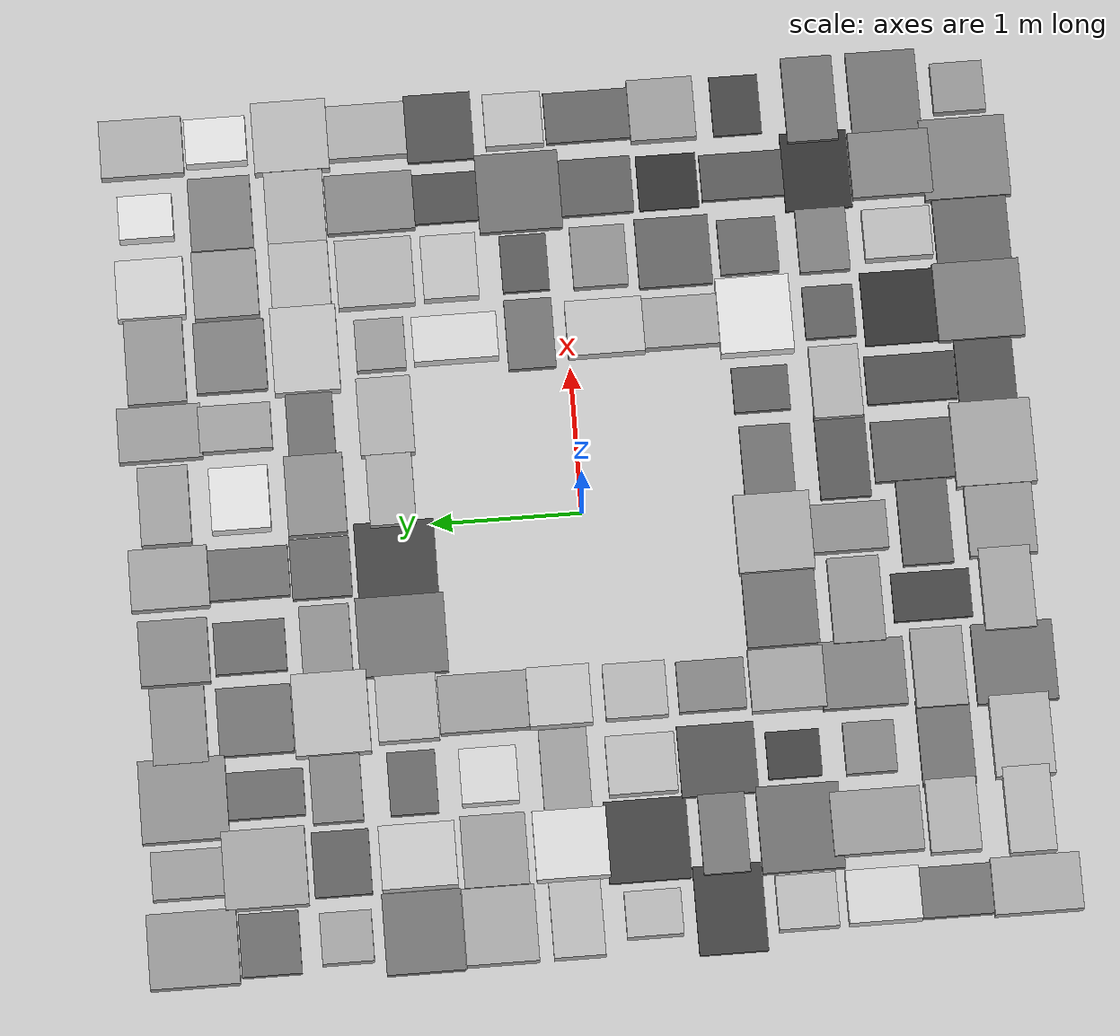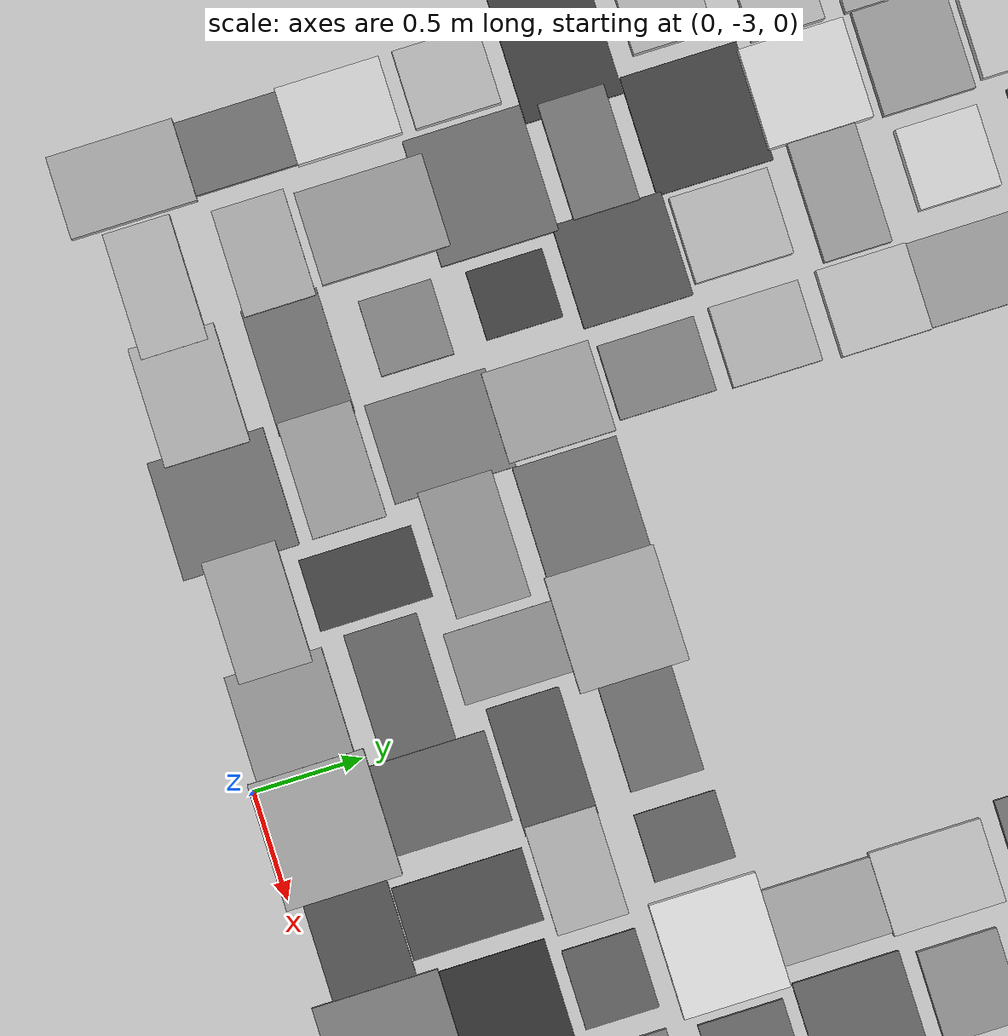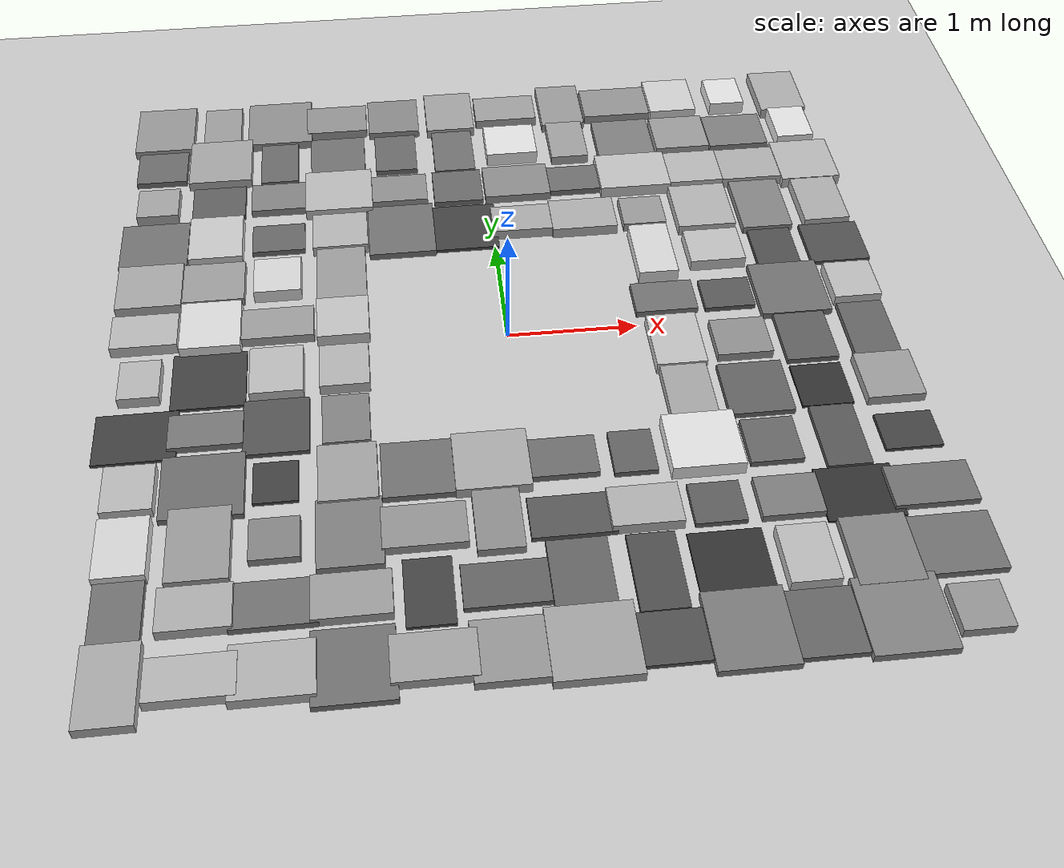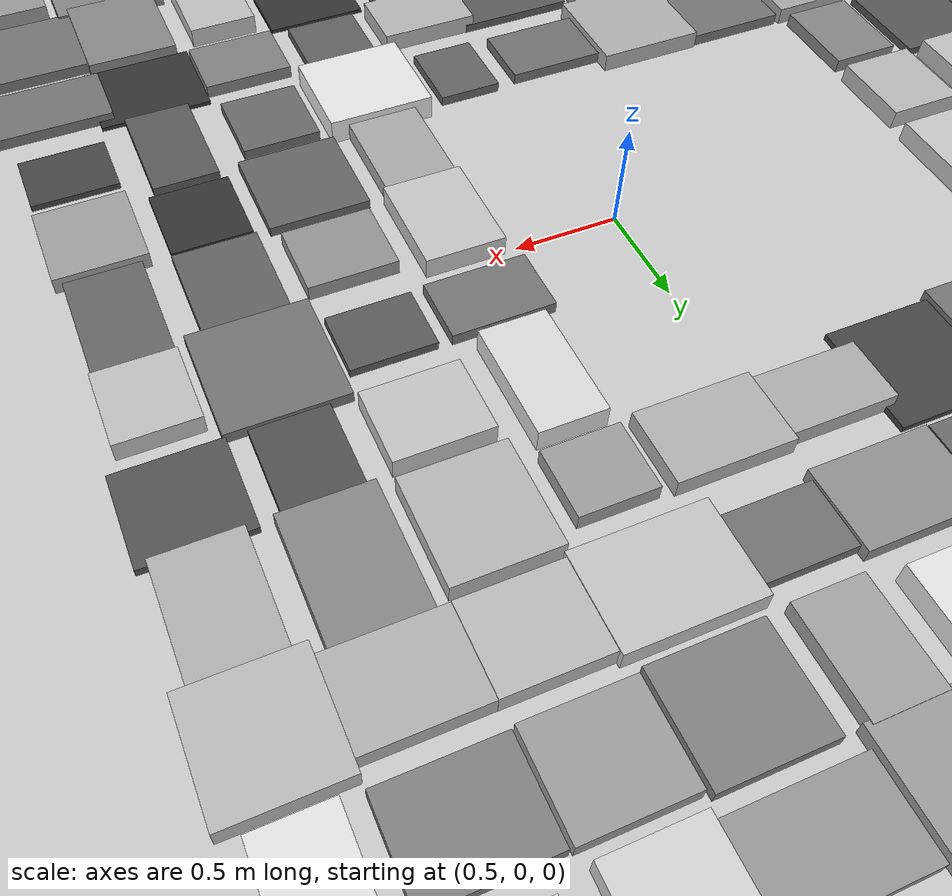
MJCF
<mujoco model="terrain_scene">
  <compiler angle="radian" coordinate="local" inertiafromgeom="true" />
  <option timestep="0.002" gravity="0.0 0.0 -9.81" iterations="50" solver="Newton" />
  <visual>
    <global offwidth="1920" offheight="1080" />
    <quality shadowsize="4096" />
    <headlight ambient="0.4 0.4 0.4" diffuse="0.6 0.6 0.6" />
  </visual>
  <asset>
    <texture name="grid_texture" type="2d" builtin="checker" rgb1="0.9 0.9 0.9" rgb2="0.7 0.7 0.7" width="512" height="512" />
    <material name="grid_material" texture="grid_texture" texrepeat="10 10" reflectance="0.1" />
  </asset>
  <worldbody>
    <geom name="ground" type="plane" size="6.0 6.0 0.1" pos="0 0 0" rgba="0.8 0.8 0.8 1.0" friction="1.0 0.005 0.0001" />
    <geom name="box_0" type="box" size="0.1894 0.2905 0.0441" pos="-2.7500 -2.7500 0.0441" rgba="0.677 0.677 0.677 1.000" friction="1.0 0.005 0.0001" />
    <geom name="box_1" type="box" size="0.1684 0.2747 0.0282" pos="-2.7500 -2.2500 0.0282" rgba="0.455 0.455 0.455 1.000" friction="1.0 0.005 0.0001" />
    <geom name="box_2" type="box" size="0.1769 0.2399 0.0564" pos="-2.7500 -1.7500 0.0564" rgba="0.849 0.849 0.849 1.000" friction="1.0 0.005 0.0001" />
    <geom name="box_3" type="box" size="0.1795 0.1965 0.0486" pos="-2.7500 -1.2500 0.0486" rgba="0.740 0.740 0.740 1.000" friction="1.0 0.005 0.0001" />
    <geom name="box_4" type="box" size="0.2958 0.2251 0.0142" pos="-2.7500 -0.7500 0.0142" rgba="0.258 0.258 0.258 1.000" friction="1.0 0.005 0.0001" />
    <geom name="box_5" type="box" size="0.1521 0.1844 0.0477" pos="-2.7500 -0.2500 0.0477" rgba="0.727 0.727 0.727 1.000" friction="1.0 0.005 0.0001" />
    <geom name="box_6" type="box" size="0.2516 0.1683 0.0485" pos="-2.7500 0.2500 0.0485" rgba="0.739 0.739 0.739 1.000" friction="1.0 0.005 0.0001" />
    <geom name="box_7" type="box" size="0.2541 0.2372 0.0434" pos="-2.7500 0.7500 0.0434" rgba="0.667 0.667 0.667 1.000" friction="1.0 0.005 0.0001" />
    <geom name="box_8" type="box" size="0.2706 0.2573 0.0285" pos="-2.7500 1.2500 0.0285" rgba="0.459 0.459 0.459 1.000" friction="1.0 0.005 0.0001" />
    <geom name="box_9" type="box" size="0.1697 0.1686 0.0423" pos="-2.7500 1.7500 0.0423" rgba="0.652 0.652 0.652 1.000" friction="1.0 0.005 0.0001" />
    <geom name="box_10" type="box" size="0.2096 0.1951 0.0265" pos="-2.7500 2.2500 0.0265" rgba="0.430 0.430 0.430 1.000" friction="1.0 0.005 0.0001" />
    <geom name="box_11" type="box" size="0.2494 0.2933 0.0388" pos="-2.7500 2.7500 0.0388" rgba="0.604 0.604 0.604 1.000" friction="1.0 0.005 0.0001" />
    <geom name="box_12" type="box" size="0.2887 0.1537 0.0475" pos="-2.2500 -2.7500 0.0475" rgba="0.725 0.725 0.725 1.000" friction="1.0 0.005 0.0001" />
    <geom name="box_13" type="box" size="0.2451 0.1659 0.0453" pos="-2.2500 -2.2500 0.0453" rgba="0.694 0.694 0.694 1.000" friction="1.0 0.005 0.0001" />
    <geom name="box_14" type="box" size="0.2129 0.2949 0.0399" pos="-2.2500 -1.7500 0.0399" rgba="0.618 0.618 0.618 1.000" friction="1.0 0.005 0.0001" />
    <geom name="box_15" type="box" size="0.2900 0.2707 0.0272" pos="-2.2500 -1.2500 0.0272" rgba="0.441 0.441 0.441 1.000" friction="1.0 0.005 0.0001" />
    <geom name="box_16" type="box" size="0.2677 0.1527 0.0297" pos="-2.2500 -0.7500 0.0297" rgba="0.476 0.476 0.476 1.000" friction="1.0 0.005 0.0001" />
    <geom name="box_17" type="box" size="0.2744 0.2695 0.0146" pos="-2.2500 -0.2500 0.0146" rgba="0.265 0.265 0.265 1.000" friction="1.0 0.005 0.0001" />
    <geom name="box_18" type="box" size="0.2296 0.2409 0.0578" pos="-2.2500 0.2500 0.0578" rgba="0.869 0.869 0.869 1.000" friction="1.0 0.005 0.0001" />
    <geom name="box_19" type="box" size="0.2405 0.2119 0.0408" pos="-2.2500 0.7500 0.0408" rgba="0.631 0.631 0.631 1.000" friction="1.0 0.005 0.0001" />
    <geom name="box_20" type="box" size="0.2139 0.2478 0.0527" pos="-2.2500 1.2500 0.0527" rgba="0.798 0.798 0.798 1.000" friction="1.0 0.005 0.0001" />
    <geom name="box_21" type="box" size="0.2181 0.1872 0.0230" pos="-2.2500 1.7500 0.0230" rgba="0.382 0.382 0.382 1.000" friction="1.0 0.005 0.0001" />
    <geom name="box_22" type="box" size="0.2619 0.2725 0.0428" pos="-2.2500 2.2500 0.0428" rgba="0.660 0.660 0.660 1.000" friction="1.0 0.005 0.0001" />
    <geom name="box_23" type="box" size="0.1600 0.2392 0.0405" pos="-2.2500 2.7500 0.0405" rgba="0.627 0.627 0.627 1.000" friction="1.0 0.005 0.0001" />
    <geom name="box_24" type="box" size="0.2737 0.1966 0.0463" pos="-1.7500 -2.7500 0.0463" rgba="0.708 0.708 0.708 1.000" friction="1.0 0.005 0.0001" />
    <geom name="box_25" type="box" size="0.2881 0.1748 0.0282" pos="-1.7500 -2.2500 0.0282" rgba="0.454 0.454 0.454 1.000" friction="1.0 0.005 0.0001" />
    <geom name="box_26" type="box" size="0.1730 0.1673 0.0336" pos="-1.7500 -1.7500 0.0336" rgba="0.531 0.531 0.531 1.000" friction="1.0 0.005 0.0001" />
    <geom name="box_27" type="box" size="0.1583 0.1762 0.0144" pos="-1.7500 -1.2500 0.0144" rgba="0.262 0.262 0.262 1.000" friction="1.0 0.005 0.0001" />
    <geom name="box_28" type="box" size="0.2387 0.2521 0.0199" pos="-1.7500 -0.7500 0.0199" rgba="0.338 0.338 0.338 1.000" friction="1.0 0.005 0.0001" />
    <geom name="box_29" type="box" size="0.1977 0.2257 0.0490" pos="-1.7500 -0.2500 0.0490" rgba="0.746 0.746 0.746 1.000" friction="1.0 0.005 0.0001" />
    <geom name="box_30" type="box" size="0.2777 0.1565 0.0406" pos="-1.7500 0.2500 0.0406" rgba="0.629 0.629 0.629 1.000" friction="1.0 0.005 0.0001" />
    <geom name="box_31" type="box" size="0.1855 0.1874 0.0568" pos="-1.7500 0.7500 0.0568" rgba="0.855 0.855 0.855 1.000" friction="1.0 0.005 0.0001" />
    <geom name="box_32" type="box" size="0.2124 0.1574 0.0252" pos="-1.7500 1.2500 0.0252" rgba="0.412 0.412 0.412 1.000" friction="1.0 0.005 0.0001" />
    <geom name="box_33" type="box" size="0.2286 0.1653 0.0336" pos="-1.7500 1.7500 0.0336" rgba="0.530 0.530 0.530 1.000" friction="1.0 0.005 0.0001" />
    <geom name="box_34" type="box" size="0.1578 0.2887 0.0261" pos="-1.7500 2.2500 0.0261" rgba="0.425 0.425 0.425 1.000" friction="1.0 0.005 0.0001" />
    <geom name="box_35" type="box" size="0.2765 0.2854 0.0369" pos="-1.7500 2.7500 0.0369" rgba="0.576 0.576 0.576 1.000" friction="1.0 0.005 0.0001" />
    <geom name="box_36" type="box" size="0.2703 0.2669 0.0282" pos="-1.2500 -2.7500 0.0282" rgba="0.455 0.455 0.455 1.000" friction="1.0 0.005 0.0001" />
    <geom name="box_37" type="box" size="0.2668 0.1702 0.0408" pos="-1.2500 -2.2500 0.0408" rgba="0.632 0.632 0.632 1.000" friction="1.0 0.005 0.0001" />
    <geom name="box_38" type="box" size="0.2271 0.2786 0.0321" pos="-1.2500 -1.7500 0.0321" rgba="0.510 0.510 0.510 1.000" friction="1.0 0.005 0.0001" />
    <geom name="box_39" type="box" size="0.2078 0.2459 0.0422" pos="-1.2500 -1.2500 0.0422" rgba="0.651 0.651 0.651 1.000" friction="1.0 0.005 0.0001" />
    <geom name="box_40" type="box" size="0.1710 0.2217 0.0332" pos="-1.2500 -0.7500 0.0332" rgba="0.525 0.525 0.525 1.000" friction="1.0 0.005 0.0001" />
    <geom name="box_41" type="box" size="0.1849 0.2051 0.0471" pos="-1.2500 -0.2500 0.0471" rgba="0.720 0.720 0.720 1.000" friction="1.0 0.005 0.0001" />
    <geom name="box_42" type="box" size="0.1991 0.2069 0.0510" pos="-1.2500 0.2500 0.0510" rgba="0.774 0.774 0.774 1.000" friction="1.0 0.005 0.0001" />
    <geom name="box_43" type="box" size="0.1945 0.2923 0.0405" pos="-1.2500 0.7500 0.0405" rgba="0.627 0.627 0.627 1.000" friction="1.0 0.005 0.0001" />
    <geom name="box_44" type="box" size="0.2221 0.1993 0.0473" pos="-1.2500 1.2500 0.0473" rgba="0.722 0.722 0.722 1.000" friction="1.0 0.005 0.0001" />
    <geom name="box_45" type="box" size="0.2773 0.2479 0.0489" pos="-1.2500 1.7500 0.0489" rgba="0.744 0.744 0.744 1.000" friction="1.0 0.005 0.0001" />
    <geom name="box_46" type="box" size="0.2299 0.2449 0.0282" pos="-1.2500 2.2500 0.0282" rgba="0.455 0.455 0.455 1.000" friction="1.0 0.005 0.0001" />
    <geom name="box_47" type="box" size="0.2602 0.1804 0.0378" pos="-1.2500 2.7500 0.0378" rgba="0.589 0.589 0.589 1.000" friction="1.0 0.005 0.0001" />
    <geom name="box_48" type="box" size="0.2791 0.1698 0.0426" pos="-0.7500 -2.7500 0.0426" rgba="0.656 0.656 0.656 1.000" friction="1.0 0.005 0.0001" />
    <geom name="box_49" type="box" size="0.1643 0.2589 0.0152" pos="-0.7500 -2.2500 0.0152" rgba="0.272 0.272 0.272 1.000" friction="1.0 0.005 0.0001" />
    <geom name="box_50" type="box" size="0.2904 0.1706 0.0381" pos="-0.7500 -1.7500 0.0381" rgba="0.594 0.594 0.594 1.000" friction="1.0 0.005 0.0001" />
    <geom name="box_51" type="box" size="0.2701 0.2391 0.0281" pos="-0.7500 -1.2500 0.0281" rgba="0.453 0.453 0.453 1.000" friction="1.0 0.005 0.0001" />
    <geom name="box_52" type="box" size="0.2693 0.2919 0.0285" pos="-0.7500 1.2500 0.0285" rgba="0.459 0.459 0.459 1.000" friction="1.0 0.005 0.0001" />
    <geom name="box_53" type="box" size="0.2385 0.1643 0.0366" pos="-0.7500 1.7500 0.0366" rgba="0.573 0.573 0.573 1.000" friction="1.0 0.005 0.0001" />
    <geom name="box_54" type="box" size="0.1757 0.2347 0.0260" pos="-0.7500 2.2500 0.0260" rgba="0.424 0.424 0.424 1.000" friction="1.0 0.005 0.0001" />
    <geom name="box_55" type="box" size="0.2199 0.2284 0.0350" pos="-0.7500 2.7500 0.0350" rgba="0.550 0.550 0.550 1.000" friction="1.0 0.005 0.0001" />
    <geom name="box_56" type="box" size="0.2699 0.2238 0.0387" pos="-0.2500 -2.7500 0.0387" rgba="0.602 0.602 0.602 1.000" friction="1.0 0.005 0.0001" />
    <geom name="box_57" type="box" size="0.2897 0.1680 0.0243" pos="-0.2500 -2.2500 0.0243" rgba="0.400 0.400 0.400 1.000" friction="1.0 0.005 0.0001" />
    <geom name="box_58" type="box" size="0.1632 0.2487 0.0364" pos="-0.2500 -1.7500 0.0364" rgba="0.569 0.569 0.569 1.000" friction="1.0 0.005 0.0001" />
    <geom name="box_59" type="box" size="0.2661 0.2507 0.0444" pos="-0.2500 -1.2500 0.0444" rgba="0.682 0.682 0.682 1.000" friction="1.0 0.005 0.0001" />
    <geom name="box_60" type="box" size="0.2848 0.2644 0.0149" pos="-0.2500 1.2500 0.0149" rgba="0.269 0.269 0.269 1.000" friction="1.0 0.005 0.0001" />
    <geom name="box_61" type="box" size="0.2046 0.1972 0.0260" pos="-0.2500 1.7500 0.0260" rgba="0.424 0.424 0.424 1.000" friction="1.0 0.005 0.0001" />
    <geom name="box_62" type="box" size="0.1722 0.2904 0.0281" pos="-0.2500 2.2500 0.0281" rgba="0.453 0.453 0.453 1.000" friction="1.0 0.005 0.0001" />
    <geom name="box_63" type="box" size="0.2075 0.2595 0.0422" pos="-0.2500 2.7500 0.0422" rgba="0.651 0.651 0.651 1.000" friction="1.0 0.005 0.0001" />
    <geom name="box_64" type="box" size="0.2904 0.2670 0.0423" pos="0.2500 -2.7500 0.0423" rgba="0.652 0.652 0.652 1.000" friction="1.0 0.005 0.0001" />
    <geom name="box_65" type="box" size="0.2065 0.2980 0.0245" pos="0.2500 -2.2500 0.0245" rgba="0.403 0.403 0.403 1.000" friction="1.0 0.005 0.0001" />
    <geom name="box_66" type="box" size="0.2927 0.1678 0.0210" pos="0.2500 -1.7500 0.0210" rgba="0.354 0.354 0.354 1.000" friction="1.0 0.005 0.0001" />
    <geom name="box_67" type="box" size="0.2456 0.1683 0.0272" pos="0.2500 -1.2500 0.0272" rgba="0.441 0.441 0.441 1.000" friction="1.0 0.005 0.0001" />
    <geom name="box_68" type="box" size="0.2529 0.1518 0.0443" pos="0.2500 1.2500 0.0443" rgba="0.681 0.681 0.681 1.000" friction="1.0 0.005 0.0001" />
    <geom name="box_69" type="box" size="0.2738 0.1943 0.0362" pos="0.2500 1.7500 0.0362" rgba="0.567 0.567 0.567 1.000" friction="1.0 0.005 0.0001" />
    <geom name="box_70" type="box" size="0.2163 0.1953 0.0600" pos="0.2500 2.2500 0.0600" rgba="0.900 0.900 0.900 1.000" friction="1.0 0.005 0.0001" />
    <geom name="box_71" type="box" size="0.2672 0.1666 0.0414" pos="0.2500 2.7500 0.0414" rgba="0.640 0.640 0.640 1.000" friction="1.0 0.005 0.0001" />
    <geom name="box_72" type="box" size="0.2819 0.1926 0.0188" pos="0.7500 -2.7500 0.0188" rgba="0.324 0.324 0.324 1.000" friction="1.0 0.005 0.0001" />
    <geom name="box_73" type="box" size="0.1660 0.2999 0.0180" pos="0.7500 -2.2500 0.0180" rgba="0.312 0.312 0.312 1.000" friction="1.0 0.005 0.0001" />
    <geom name="box_74" type="box" size="0.2475 0.1636 0.0461" pos="0.7500 -1.7500 0.0461" rgba="0.705 0.705 0.705 1.000" friction="1.0 0.005 0.0001" />
    <geom name="box_75" type="box" size="0.1543 0.1861 0.0237" pos="0.7500 -1.2500 0.0237" rgba="0.392 0.392 0.392 1.000" friction="1.0 0.005 0.0001" />
    <geom name="box_76" type="box" size="0.2665 0.1797 0.0454" pos="0.7500 1.2500 0.0454" rgba="0.695 0.695 0.695 1.000" friction="1.0 0.005 0.0001" />
    <geom name="box_77" type="box" size="0.2484 0.1554 0.0274" pos="0.7500 1.7500 0.0274" rgba="0.444 0.444 0.444 1.000" friction="1.0 0.005 0.0001" />
    <geom name="box_78" type="box" size="0.1577 0.2409 0.0415" pos="0.7500 2.2500 0.0415" rgba="0.640 0.640 0.640 1.000" friction="1.0 0.005 0.0001" />
    <geom name="box_79" type="box" size="0.1858 0.2774 0.0398" pos="0.7500 2.7500 0.0398" rgba="0.617 0.617 0.617 1.000" friction="1.0 0.005 0.0001" />
    <geom name="box_80" type="box" size="0.2701 0.2892 0.0309" pos="1.2500 -2.7500 0.0309" rgba="0.493 0.493 0.493 1.000" friction="1.0 0.005 0.0001" />
    <geom name="box_81" type="box" size="0.2547 0.2757 0.0100" pos="1.2500 -2.2500 0.0100" rgba="0.200 0.200 0.200 1.000" friction="1.0 0.005 0.0001" />
    <geom name="box_82" type="box" size="0.1803 0.1687 0.0226" pos="1.2500 -1.7500 0.0226" rgba="0.376 0.376 0.376 1.000" friction="1.0 0.005 0.0001" />
    <geom name="box_83" type="box" size="0.2618 0.2445 0.0599" pos="1.2500 -1.2500 0.0599" rgba="0.898 0.898 0.898 1.000" friction="1.0 0.005 0.0001" />
    <geom name="box_84" type="box" size="0.1733 0.2602 0.0430" pos="1.2500 -0.7500 0.0430" rgba="0.662 0.662 0.662 1.000" friction="1.0 0.005 0.0001" />
    <geom name="box_85" type="box" size="0.1906 0.2565 0.0508" pos="1.2500 -0.2500 0.0508" rgba="0.772 0.772 0.772 1.000" friction="1.0 0.005 0.0001" />
    <geom name="box_86" type="box" size="0.2417 0.1582 0.0285" pos="1.2500 0.2500 0.0285" rgba="0.458 0.458 0.458 1.000" friction="1.0 0.005 0.0001" />
    <geom name="box_87" type="box" size="0.1564 0.2826 0.0571" pos="1.2500 0.7500 0.0571" rgba="0.859 0.859 0.859 1.000" friction="1.0 0.005 0.0001" />
    <geom name="box_88" type="box" size="0.1760 0.1638 0.0400" pos="1.2500 1.2500 0.0400" rgba="0.619 0.619 0.619 1.000" friction="1.0 0.005 0.0001" />
    <geom name="box_89" type="box" size="0.2970 0.2188 0.0508" pos="1.2500 1.7500 0.0508" rgba="0.771 0.771 0.771 1.000" friction="1.0 0.005 0.0001" />
    <geom name="box_90" type="box" size="0.2455 0.2359 0.0321" pos="1.2500 2.2500 0.0321" rgba="0.509 0.509 0.509 1.000" friction="1.0 0.005 0.0001" />
    <geom name="box_91" type="box" size="0.2919 0.1952 0.0382" pos="1.2500 2.7500 0.0382" rgba="0.595 0.595 0.595 1.000" friction="1.0 0.005 0.0001" />
    <geom name="box_92" type="box" size="0.2550 0.2474 0.0249" pos="1.7500 -2.7500 0.0249" rgba="0.409 0.409 0.409 1.000" friction="1.0 0.005 0.0001" />
    <geom name="box_93" type="box" size="0.1723 0.2263 0.0487" pos="1.7500 -2.2500 0.0487" rgba="0.742 0.742 0.742 1.000" friction="1.0 0.005 0.0001" />
    <geom name="box_94" type="box" size="0.2211 0.1679 0.0315" pos="1.7500 -1.7500 0.0315" rgba="0.501 0.501 0.501 1.000" friction="1.0 0.005 0.0001" />
    <geom name="box_95" type="box" size="0.1917 0.1957 0.0252" pos="1.7500 -1.2500 0.0252" rgba="0.412 0.412 0.412 1.000" friction="1.0 0.005 0.0001" />
    <geom name="box_96" type="box" size="0.2416 0.2452 0.0239" pos="1.7500 -0.7500 0.0239" rgba="0.395 0.395 0.395 1.000" friction="1.0 0.005 0.0001" />
    <geom name="box_97" type="box" size="0.2113 0.1826 0.0369" pos="1.7500 -0.2500 0.0369" rgba="0.576 0.576 0.576 1.000" friction="1.0 0.005 0.0001" />
    <geom name="box_98" type="box" size="0.1976 0.1554 0.0211" pos="1.7500 0.2500 0.0211" rgba="0.355 0.355 0.355 1.000" friction="1.0 0.005 0.0001" />
    <geom name="box_99" type="box" size="0.2211 0.1838 0.0503" pos="1.7500 0.7500 0.0503" rgba="0.765 0.765 0.765 1.000" friction="1.0 0.005 0.0001" />
    <geom name="box_100" type="box" size="0.2349 0.2553 0.0468" pos="1.7500 1.2500 0.0468" rgba="0.715 0.715 0.715 1.000" friction="1.0 0.005 0.0001" />
    <geom name="box_101" type="box" size="0.2479 0.1974 0.0482" pos="1.7500 1.7500 0.0482" rgba="0.734 0.734 0.734 1.000" friction="1.0 0.005 0.0001" />
    <geom name="box_102" type="box" size="0.2324 0.2147 0.0400" pos="1.7500 2.2500 0.0400" rgba="0.620 0.620 0.620 1.000" friction="1.0 0.005 0.0001" />
    <geom name="box_103" type="box" size="0.2041 0.2269 0.0552" pos="1.7500 2.7500 0.0552" rgba="0.832 0.832 0.832 1.000" friction="1.0 0.005 0.0001" />
    <geom name="box_104" type="box" size="0.2830 0.2882 0.0330" pos="2.2500 -2.7500 0.0330" rgba="0.522 0.522 0.522 1.000" friction="1.0 0.005 0.0001" />
    <geom name="box_105" type="box" size="0.2280 0.2700 0.0333" pos="2.2500 -2.2500 0.0333" rgba="0.526 0.526 0.526 1.000" friction="1.0 0.005 0.0001" />
    <geom name="box_106" type="box" size="0.2756 0.2241 0.0100" pos="2.2500 -1.7500 0.0100" rgba="0.201 0.201 0.201 1.000" friction="1.0 0.005 0.0001" />
    <geom name="box_107" type="box" size="0.1608 0.2763 0.0206" pos="2.2500 -1.2500 0.0206" rgba="0.349 0.349 0.349 1.000" friction="1.0 0.005 0.0001" />
    <geom name="box_108" type="box" size="0.1921 0.2001 0.0100" pos="2.2500 -0.7500 0.0100" rgba="0.200 0.200 0.200 1.000" friction="1.0 0.005 0.0001" />
    <geom name="box_109" type="box" size="0.1971 0.2614 0.0232" pos="2.2500 -0.2500 0.0232" rgba="0.385 0.385 0.385 1.000" friction="1.0 0.005 0.0001" />
    <geom name="box_110" type="box" size="0.2741 0.2785 0.0280" pos="2.2500 0.2500 0.0280" rgba="0.452 0.452 0.452 1.000" friction="1.0 0.005 0.0001" />
    <geom name="box_111" type="box" size="0.1730 0.2401 0.0184" pos="2.2500 0.7500 0.0184" rgba="0.318 0.318 0.318 1.000" friction="1.0 0.005 0.0001" />
    <geom name="box_112" type="box" size="0.2047 0.2938 0.0339" pos="2.2500 1.2500 0.0339" rgba="0.534 0.534 0.534 1.000" friction="1.0 0.005 0.0001" />
    <geom name="box_113" type="box" size="0.2658 0.1966 0.0457" pos="2.2500 1.7500 0.0457" rgba="0.699 0.699 0.699 1.000" friction="1.0 0.005 0.0001" />
    <geom name="box_114" type="box" size="0.2558 0.2082 0.0321" pos="2.2500 2.2500 0.0321" rgba="0.510 0.510 0.510 1.000" friction="1.0 0.005 0.0001" />
    <geom name="box_115" type="box" size="0.1516 0.1814 0.0600" pos="2.2500 2.7500 0.0600" rgba="0.900 0.900 0.900 1.000" friction="1.0 0.005 0.0001" />
    <geom name="box_116" type="box" size="0.1746 0.1749 0.0383" pos="2.7500 -2.7500 0.0383" rgba="0.597 0.597 0.597 1.000" friction="1.0 0.005 0.0001" />
    <geom name="box_117" type="box" size="0.2984 0.2334 0.0283" pos="2.7500 -2.2500 0.0283" rgba="0.456 0.456 0.456 1.000" friction="1.0 0.005 0.0001" />
    <geom name="box_118" type="box" size="0.2985 0.1712 0.0280" pos="2.7500 -1.7500 0.0280" rgba="0.452 0.452 0.452 1.000" friction="1.0 0.005 0.0001" />
    <geom name="box_119" type="box" size="0.2089 0.1620 0.0151" pos="2.7500 -1.2500 0.0151" rgba="0.271 0.271 0.271 1.000" friction="1.0 0.005 0.0001" />
    <geom name="box_120" type="box" size="0.2151 0.2204 0.0404" pos="2.7500 -0.7500 0.0404" rgba="0.626 0.626 0.626 1.000" friction="1.0 0.005 0.0001" />
    <geom name="box_121" type="box" size="0.1771 0.2861 0.0243" pos="2.7500 -0.2500 0.0243" rgba="0.401 0.401 0.401 1.000" friction="1.0 0.005 0.0001" />
    <geom name="box_122" type="box" size="0.1849 0.1938 0.0493" pos="2.7500 0.2500 0.0493" rgba="0.751 0.751 0.751 1.000" friction="1.0 0.005 0.0001" />
    <geom name="box_123" type="box" size="0.2380 0.2240 0.0189" pos="2.7500 0.7500 0.0189" rgba="0.325 0.325 0.325 1.000" friction="1.0 0.005 0.0001" />
    <geom name="box_124" type="box" size="0.1866 0.2765 0.0452" pos="2.7500 1.2500 0.0452" rgba="0.692 0.692 0.692 1.000" friction="1.0 0.005 0.0001" />
    <geom name="box_125" type="box" size="0.2474 0.2505 0.0480" pos="2.7500 1.7500 0.0480" rgba="0.732 0.732 0.732 1.000" friction="1.0 0.005 0.0001" />
    <geom name="box_126" type="box" size="0.1587 0.2050 0.0599" pos="2.7500 2.2500 0.0599" rgba="0.899 0.899 0.899 1.000" friction="1.0 0.005 0.0001" />
    <geom name="box_127" type="box" size="0.2008 0.2767 0.0452" pos="2.7500 2.7500 0.0452" rgba="0.692 0.692 0.692 1.000" friction="1.0 0.005 0.0001" />
    <light name="main_light" pos="0 0 5" dir="0 0 -1" diffuse="0.6 0.6 0.6" specular="0.3 0.3 0.3" castshadow="true" />
    <camera name="track_cam" mode="trackcom" pos="3.0 0 2" xyaxes="0 1 0 -0.5 0 1" />
    <camera name="overview" pos="5 5 8" quat="0.5 0.5 -0.5 -0.5" />
  </worldbody>
</mujoco>
